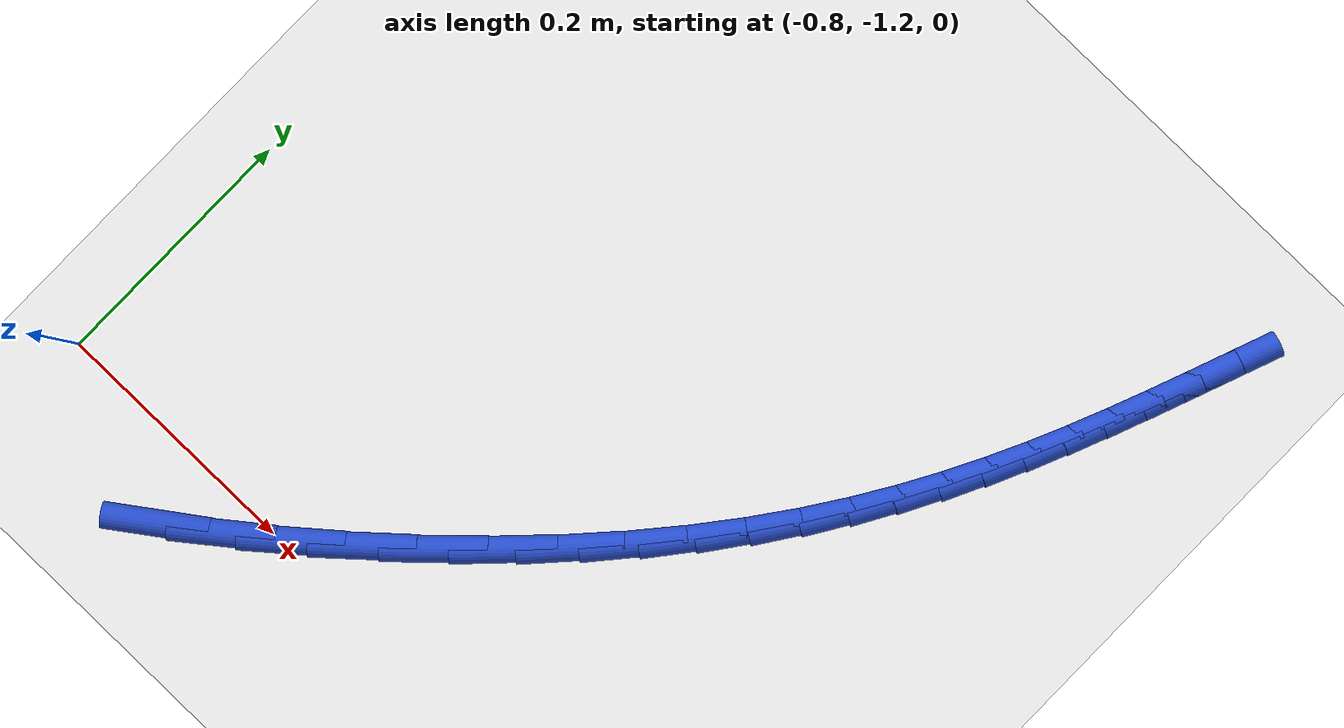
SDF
<sdf version="1.6">
 <world name="default">
  <model name="ground_plane">
   <static>1</static>
   <link name="link">
    <collision name="collision">
     <geometry><plane><normal>0 0 1</normal><size>100 100</size></plane></geometry>
     <surface><friction><ode><mu>100</mu><mu2>50</mu2></ode></friction></surface>
    </collision>
    <visual name="visual">
     <cast_shadows>0</cast_shadows>
     <geometry><plane><normal>0 0 1</normal><size>100 100</size></plane></geometry>
     <material>
      <script><uri>file://media/materials/scripts/gazebo.material</uri><name>Gazebo/WhiteGlow</name></script>
     </material>
    </visual>
   </link>
  </model>
  <model name="line">
   <link name="link_201">
    <pose>-0.6666040806429445 -1.252846475843644 0.01 0 1.57 0.6190757435311954</pose>
    <collision name="collision">
     <geometry><cylinder><radius>0.01</radius><length>0.08</length></cylinder></geometry>
    </collision>
    <visual name="visual">
     <material>
      <script><name>Gazebo/Blue</name><uri>file://media/materials/scripts/gazebo.material</uri></script>
     </material>
     <geometry><cylinder><radius>0.01</radius><length>0.08</length></cylinder></geometry>
    </visual>
   </link>
   <link name="link_202">
    <pose>-0.6266910817323467 -1.224407881082541 0.01 0 1.57 0.6608234060706241</pose>
    <collision name="collision">
     <geometry><cylinder><radius>0.01</radius><length>0.08</length></cylinder></geometry>
    </collision>
    <visual name="visual">
     <material>
      <script><name>Gazebo/Blue</name><uri>file://media/materials/scripts/gazebo.material</uri></script>
     </material>
     <geometry><cylinder><radius>0.01</radius><length>0.08</length></cylinder></geometry>
    </visual>
   </link>
   <link name="link_203">
    <pose>-0.586328422224225 -1.193028935172353 0.01 0 1.57 0.696794285909807</pose>
    <collision name="collision">
     <geometry><cylinder><radius>0.01</radius><length>0.08</length></cylinder></geometry>
    </collision>
    <visual name="visual">
     <material>
      <script><name>Gazebo/Blue</name><uri>file://media/materials/scripts/gazebo.material</uri></script>
     </material>
     <geometry><cylinder><radius>0.01</radius><length>0.08</length></cylinder></geometry>
    </visual>
   </link>
   <link name="link_204">
    <pose>-0.5463185179457739 -1.1595477225764999 0.01 0 1.57 0.7296227674979628</pose>
    <collision name="collision">
     <geometry><cylinder><radius>0.01</radius><length>0.08</length></cylinder></geometry>
    </collision>
    <visual name="visual">
     <material>
      <script><name>Gazebo/Blue</name><uri>file://media/materials/scripts/gazebo.material</uri></script>
     </material>
     <geometry><cylinder><radius>0.01</radius><length>0.08</length></cylinder></geometry>
    </visual>
   </link>
   <link name="link_205">
    <pose>-0.5074637847241871 -1.1248023277583994 0.01 0 1.57 0.7614581514491437</pose>
    <collision name="collision">
     <geometry><cylinder><radius>0.01</radius><length>0.08</length></cylinder></geometry>
    </collision>
    <visual name="visual">
     <material>
      <script><name>Gazebo/Blue</name><uri>file://media/materials/scripts/gazebo.material</uri></script>
     </material>
     <geometry><cylinder><radius>0.01</radius><length>0.08</length></cylinder></geometry>
    </visual>
   </link>
   <link name="link_206">
    <pose>-0.47056663838665896 -1.0896308351814725 0.01 0 1.57 0.7944032428076363</pose>
    <collision name="collision">
     <geometry><cylinder><radius>0.01</radius><length>0.08</length></cylinder></geometry>
    </collision>
    <visual name="visual">
     <material>
      <script><name>Gazebo/Blue</name><uri>file://media/materials/scripts/gazebo.material</uri></script>
     </material>
     <geometry><cylinder><radius>0.01</radius><length>0.08</length></cylinder></geometry>
    </visual>
   </link>
   <link name="link_207">
    <pose>-0.43641476146075375 -1.0548582714162842 0.01 0 1.57 0.8296319897001337</pose>
    <collision name="collision">
     <geometry><cylinder><radius>0.01</radius><length>0.08</length></cylinder></geometry>
    </collision>
    <visual name="visual">
     <material>
      <script><name>Gazebo/Blue</name><uri>file://media/materials/scripts/gazebo.material</uri></script>
     </material>
     <geometry><cylinder><radius>0.01</radius><length>0.08</length></cylinder></geometry>
    </visual>
   </link>
   <link name="link_208">
    <pose>-0.40534222737016334 -1.020907636384641 0.01 0 1.57 0.866484588380017</pose>
    <collision name="collision">
     <geometry><cylinder><radius>0.01</radius><length>0.08</length></cylinder></geometry>
    </collision>
    <visual name="visual">
     <material>
      <script><name>Gazebo/Blue</name><uri>file://media/materials/scripts/gazebo.material</uri></script>
     </material>
     <geometry><cylinder><radius>0.01</radius><length>0.08</length></cylinder></geometry>
    </visual>
   </link>
   <link name="link_209">
    <pose>-0.3771547846717264 -0.9877336839483288 0.01 0 1.57 0.9045396407659686</pose>
    <collision name="collision">
     <geometry><cylinder><radius>0.01</radius><length>0.08</length></cylinder></geometry>
    </collision>
    <visual name="visual">
     <material>
      <script><name>Gazebo/Blue</name><uri>file://media/materials/scripts/gazebo.material</uri></script>
     </material>
     <geometry><cylinder><radius>0.01</radius><length>0.08</length></cylinder></geometry>
    </visual>
   </link>
   <link name="link_210">
    <pose>-0.3516283964801737 -0.955264769598 0.01 0 1.57 0.9433107191174814</pose>
    <collision name="collision">
     <geometry><cylinder><radius>0.01</radius><length>0.08</length></cylinder></geometry>
    </collision>
    <visual name="visual">
     <material>
      <script><name>Gazebo/Blue</name><uri>file://media/materials/scripts/gazebo.material</uri></script>
     </material>
     <geometry><cylinder><radius>0.01</radius><length>0.08</length></cylinder></geometry>
    </visual>
   </link>
   <link name="link_211">
    <pose>-0.32853902591023687 -0.9234292488243101 0.01 0 1.57 0.9821916459976835</pose>
    <collision name="collision">
     <geometry><cylinder><radius>0.01</radius><length>0.08</length></cylinder></geometry>
    </collision>
    <visual name="visual">
     <material>
      <script><name>Gazebo/Blue</name><uri>file://media/materials/scripts/gazebo.material</uri></script>
     </material>
     <geometry><cylinder><radius>0.01</radius><length>0.08</length></cylinder></geometry>
    </visual>
   </link>
   <link name="link_212">
    <pose>-0.30766263607664757 -0.8921554771179138 0.01 0 1.57 1.020470123402924</pose>
    <collision name="collision">
     <geometry><cylinder><radius>0.01</radius><length>0.08</length></cylinder></geometry>
    </collision>
    <visual name="visual">
     <material>
      <script><name>Gazebo/Blue</name><uri>file://media/materials/scripts/gazebo.material</uri></script>
     </material>
     <geometry><cylinder><radius>0.01</radius><length>0.08</length></cylinder></geometry>
    </visual>
   </link>
   <link name="link_213">
    <pose>-0.2887751900941373 -0.8613718099694648 0.01 0 1.57 1.0573540277349933</pose>
    <collision name="collision">
     <geometry><cylinder><radius>0.01</radius><length>0.08</length></cylinder></geometry>
    </collision>
    <visual name="visual">
     <material>
      <script><name>Gazebo/Blue</name><uri>file://media/materials/scripts/gazebo.material</uri></script>
     </material>
     <geometry><cylinder><radius>0.01</radius><length>0.08</length></cylinder></geometry>
    </visual>
   </link>
   <link name="link_214">
    <pose>-0.27165265107743775 -0.8310066028696182 0.01 0 1.57 1.0920087777588907</pose>
    <collision name="collision">
     <geometry><cylinder><radius>0.01</radius><length>0.08</length></cylinder></geometry>
    </collision>
    <visual name="visual">
     <material>
      <script><name>Gazebo/Blue</name><uri>file://media/materials/scripts/gazebo.material</uri></script>
     </material>
     <geometry><cylinder><radius>0.01</radius><length>0.08</length></cylinder></geometry>
    </visual>
   </link>
   <link name="link_215">
    <pose>-0.2560709821412802 -0.8009882113090283 0.01 0 1.57 1.1236018504680956</pose>
    <collision name="collision">
     <geometry><cylinder><radius>0.01</radius><length>0.08</length></cylinder></geometry>
    </collision>
    <visual name="visual">
     <material>
      <script><name>Gazebo/Blue</name><uri>file://media/materials/scripts/gazebo.material</uri></script>
     </material>
     <geometry><cylinder><radius>0.01</radius><length>0.08</length></cylinder></geometry>
    </visual>
   </link>
   <link name="link_216">
    <pose>-0.24180614640039708 -0.7712449907783503 0.01 0 1.57 1.1513490047048562</pose>
    <collision name="collision">
     <geometry><cylinder><radius>0.01</radius><length>0.08</length></cylinder></geometry>
    </collision>
    <visual name="visual">
     <material>
      <script><name>Gazebo/Blue</name><uri>file://media/materials/scripts/gazebo.material</uri></script>
     </material>
     <geometry><cylinder><radius>0.01</radius><length>0.08</length></cylinder></geometry>
    </visual>
   </link>
   <link name="link_217">
    <pose>-0.22863410696951955 -0.7417052967682386 0.01 0 1.57 1.1745566429901817</pose>
    <collision name="collision">
     <geometry><cylinder><radius>0.01</radius><length>0.08</length></cylinder></geometry>
    </collision>
    <visual name="visual">
     <material>
      <script><name>Gazebo/Blue</name><uri>file://media/materials/scripts/gazebo.material</uri></script>
     </material>
     <geometry><cylinder><radius>0.01</radius><length>0.08</length></cylinder></geometry>
    </visual>
   </link>
   <link name="link_218">
    <pose>-0.2163308269633792 -0.7122974847693477 0.01 0 1.57 1.1926560132478548</pose>
    <collision name="collision">
     <geometry><cylinder><radius>0.01</radius><length>0.08</length></cylinder></geometry>
    </collision>
    <visual name="visual">
     <material>
      <script><name>Gazebo/Blue</name><uri>file://media/materials/scripts/gazebo.material</uri></script>
     </material>
     <geometry><cylinder><radius>0.01</radius><length>0.08</length></cylinder></geometry>
    </visual>
   </link>
   <link name="link_219">
    <pose>-0.2046722694967078 -0.6829499102723323 0.01 0 1.57 1.205227068834965</pose>
    <collision name="collision">
     <geometry><cylinder><radius>0.01</radius><length>0.08</length></cylinder></geometry>
    </collision>
    <visual name="visual">
     <material>
      <script><name>Gazebo/Blue</name><uri>file://media/materials/scripts/gazebo.material</uri></script>
     </material>
     <geometry><cylinder><radius>0.01</radius><length>0.08</length></cylinder></geometry>
    </visual>
   </link>
   <link name="link_220">
    <pose>-0.1934343976842368 -0.6535909287678464 0.01 0 1.57 1.2120119392410584</pose>
    <collision name="collision">
     <geometry><cylinder><radius>0.01</radius><length>0.08</length></cylinder></geometry>
    </collision>
    <visual name="visual">
     <material>
      <script><name>Gazebo/Blue</name><uri>file://media/materials/scripts/gazebo.material</uri></script>
     </material>
     <geometry><cylinder><radius>0.01</radius><length>0.08</length></cylinder></geometry>
    </visual>
   </link>
   <link name="link_221">
    <pose>-0.18239317464069785 -0.6241488957465451 0.01 0 1.57 1.2129194193874147</pose>
    <collision name="collision">
     <geometry><cylinder><radius>0.01</radius><length>0.08</length></cylinder></geometry>
    </collision>
    <visual name="visual">
     <material>
      <script><name>Gazebo/Blue</name><uri>file://media/materials/scripts/gazebo.material</uri></script>
     </material>
     <geometry><cylinder><radius>0.01</radius><length>0.08</length></cylinder></geometry>
    </visual>
   </link>
  </model>
 </world>
</sdf>
